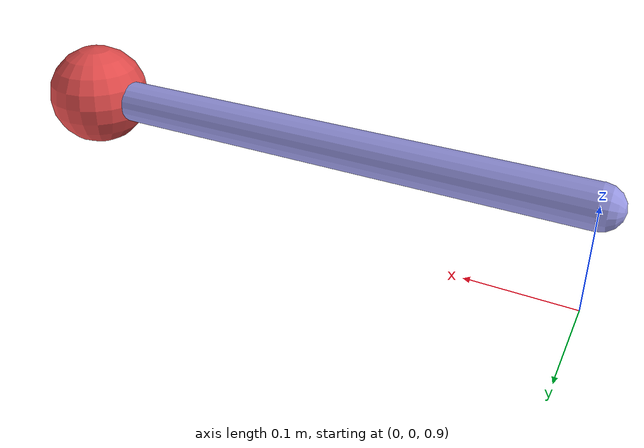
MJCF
<mujoco model="pendulum">
  <!-- Simple 1-DOF pendulum: hinge at 1m height, swings in X-Z plane.
       ctrl[0] = torque [Nm] -->

  <option timestep="0.001" gravity="0 0 -9.81"/>

  <worldbody>
    <light pos="0 0 3" dir="0 0 -1"/>
    <geom name="floor" type="plane" size="2 2 0.1" rgba="0.8 0.8 0.8 1"/>

    <body name="link" pos="0 0 1">
      <joint name="hinge" type="hinge" axis="0 1 0" damping="0.05"/>
      <geom name="rod" type="capsule" fromto="0 0 0 0.5 0 0"
            size="0.02" mass="0.001" rgba="0.6 0.6 0.9 1"/>
      <geom name="tip_mass" type="sphere" pos="0.5 0 0"
            size="0.05" mass="1.0" rgba="0.9 0.3 0.3 1"/>
    </body>
  </worldbody>

  <actuator>
    <motor name="hinge_motor" joint="hinge" gear="1"/>
  </actuator>
</mujoco>
